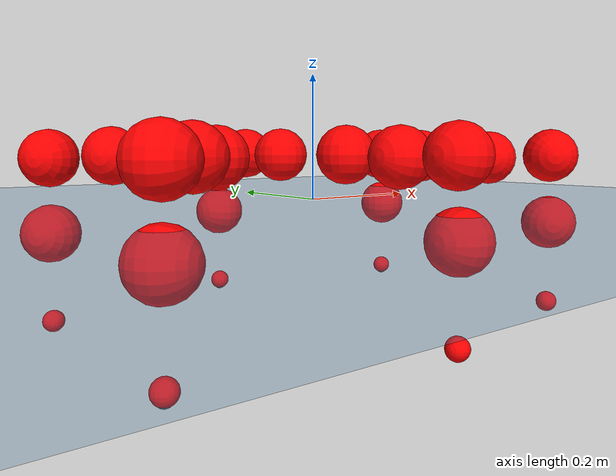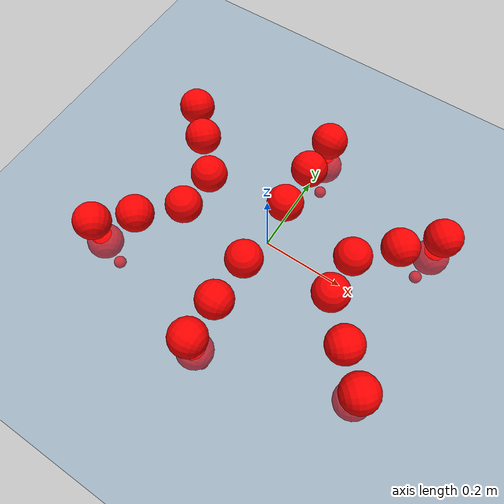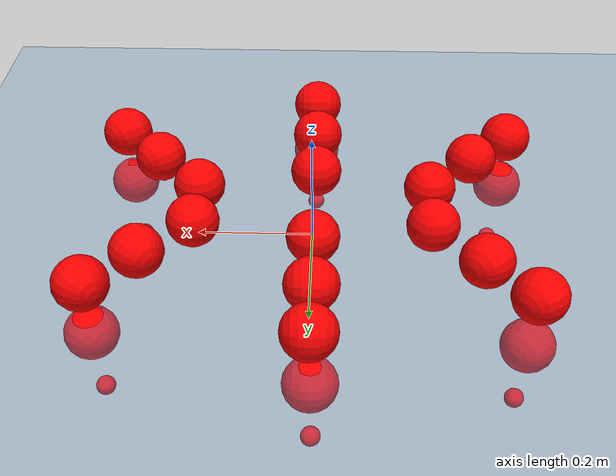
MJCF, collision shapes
<mujoco model="Golem">
  <compiler angle="radian" assetdir="assets" balanceinertia="true" inertiafromgeom="false"/>

  <option timestep="0.005" density="1.2" viscosity="2e-05"/>

  <size nkey="1"/>

  <visual>
    <quality shadowsize="8192"/>
    <map shadowclip="0.5"/>
  </visual>

  <default>
    <default class="/">
      <joint armature="0.01" damping="0.01" frictionloss="0.01"/>
      <geom contype="0" conaffinity="0" group="1" solref="-1000 -80"/>
      <site size="0.01 0.005 0.005" group="5"/>
      <general forcelimited="true" biastype="affine" gainprm="25" biasprm="0 -25 -0.5"/>
      <default class="visual">
        <geom type="mesh" group="2"/>
      </default>
      <default class="collision">
        <geom group="3"/>
      </default>
      <default class="foot">
        <geom size="0.01 0 0" condim="6" group="4" priority="1" solimp="0.015 1 0.01"/>
      </default>
      <default class="reward_collision_sphere">
        <geom group="5" rgba="1 0 0 1"/>
      </default>
    </default>
  </default>

  <asset>
    <texture type="skybox" colorspace="auto" name="//unnamed_texture_0" builtin="gradient" rgb1="0.95 0.95 0.95" rgb2="0.95 0.95 0.95" width="100" height="600"/>
    <texture type="2d" colorspace="auto" name="texplane" builtin="checker" rgb1="0.345 0.575 0.748" rgb2="0.345 0.575 0.748" markrgb="1 1 1" width="512" height="512"/>
    <material name="MatPlane" class="/" texture="texplane" texuniform="true" texrepeat="2 2" specular="0.9"/>
    <mesh name="body" class="/" file="body.stl" scale="0.001 0.001 0.001"/>
    <mesh name="coxa" class="/" file="coxa.stl" scale="0.001 0.001 0.001"/>
    <mesh name="femur" class="/" file="femur.stl" scale="0.001 0.001 0.001"/>
    <mesh name="tibia" class="/" file="tibia.stl" scale="0.001 0.001 0.001"/>
    <mesh name="tarsus" class="/" file="tarsus.stl" scale="0.001 0.001 0.001"/>
  </asset>

  <worldbody>
    <geom name="floor" class="/" size="100 100 0.125" type="plane" group="0" material="MatPlane"/>
    <light name="toplight_shadow" class="/" pos="0 0 5" dir="0.0990148 0.0990148 -0.990148" type="directional" ambient="0.04 0.04 0.04" diffuse="0.55 0.55 0.55" specular="0.12 0.12 0.12"/>
    <light name="toplight_fill" class="/" pos="0 0 5" dir="0.0990148 0.0990148 -0.990148" type="directional" castshadow="false" ambient="0.04 0.04 0.04" diffuse="0.3 0.3 0.3" specular="0.08 0.08 0.08"/>
    <body name="trunk" pos="-0.00257417 -0.000331484 -0.00182773" quat="1 -0.000194536 -6.82552e-05 0.000462497">
      <inertial pos="0.00143362 -0.000241161 -0.00410093" quat="0.999916 -0.00685091 0.0103886 -0.00349408" mass="5.04738" diaginertia="0.03357 0.0072457 0.0181416"/>
      <joint name="//unnamed_joint_0" type="free"/>
      <geom name="//unnamed_geom_1" class="/" pos="0 0 0.072285" quat="1 0 0 0" type="mesh" rgba="0.9 0.9 0.9 1" mesh="body"/>
      <site name="imu" class="/" pos="0.173505 -0.00195207 0.104956" size="0.0111541"/>
      <camera name="track" class="/" pos="0 -1.87882 0" quat="0.707107 0.707107 0 0" mode="trackcom"/>
      <camera name="ego_camera" class="/" pos="0.166059 0 0.112945" quat="-0.5 -0.5 0.5 0.5"/>
      <body name="coxa_RR" pos="-0.227652 -0.0751216 0.0722492" quat="0.382702 3.93308e-05 2.51081e-05 -0.923872">
        <inertial pos="-0.000440409 0.000263957 -0.000961955" quat="0.999927 0.000907715 0.0115153 0.00356521" mass="0.267064" diaginertia="0.0339819 0.00706028 0.0177429"/>
        <joint name="coxa_joint_RR" class="/" pos="0 0 0" axis="0.00115851 -0.00611006 -0.999981" range="-3.16454 3.19124" armature="0.0103027" damping="0.00450141" frictionloss="0.00997694"/>
        <geom name="//unnamed_geom_2" class="/" type="mesh" rgba="0.2 0.2 0.2 1" mesh="coxa"/>
        <geom name="//unnamed_geom_3" class="reward_collision_sphere" size="0.0446165" pos="-0.0383212 0 0"/>
        <body name="femur_RR" pos="0.0759694 0.0014622 0.00248984" quat="0.500417 -0.500101 0.499669 0.499813">
          <inertial pos="-0.00104368 0.00260081 0.002184" quat="0.999992 0.00374278 0.000445386 -0.00156231" mass="0.277362" diaginertia="0.0352161 0.00736755 0.019014"/>
          <joint name="femur_joint_RR" class="/" pos="0 0 0" axis="0.00102178 -0.000201096 -0.999999" range="-3.15885 3.13808" armature="0.0113047" damping="0.0193362" frictionloss="0.0123605"/>
          <geom name="//unnamed_geom_4" class="/" type="mesh" rgba="0.9 0.9 0.9 1" mesh="femur"/>
          <geom name="//unnamed_geom_5" class="reward_collision_sphere" size="0.0446165"/>
          <body name="tibia_RR" pos="0.00100361 -0.0998845 -0.00197096" quat="0.000131585 1 -0.000111755 -0.000347152">
            <inertial pos="0.00191615 -0.00172113 0.000774938" quat="0.999989 0.00162994 0.00358442 0.00249864" mass="0.281829" diaginertia="0.0337582 0.00734887 0.0183615"/>
            <joint name="tibia_joint_RR" class="/" pos="0 0 0" axis="-0.00397235 0.00114958 0.999991" range="-3.13911 3.13865" armature="0.0105116" damping="0.0206416" frictionloss="0.00982125"/>
            <geom name="//unnamed_geom_6" class="/" type="mesh" rgba="0.2 0.2 0.2 1" mesh="tibia"/>
            <geom name="//unnamed_geom_7" class="reward_collision_sphere" size="0.0446165"/>
            <body name="tarsus_RR" pos="0.10966 7.43715e-05 0.000144995" quat="1 3.49756e-05 0.000236048 0.00043184">
              <inertial pos="0.0746323 -0.00125103 0.000496395" quat="0.504801 0.492397 0.504592 0.498104" mass="0.285268" diaginertia="0.034934 0.00729956 0.0180452"/>
              <joint name="tarsus_joint_RR" class="/" pos="0 0 0" axis="0.003546 -0.00278383 0.99999" range="-3.18484 3.17999" armature="0.0108244" damping="0.0106338" frictionloss="0.0113189"/>
              <geom name="//unnamed_geom_8" class="/" type="mesh" rgba="0.9 0.9 0.9 1" mesh="tarsus"/>
              <geom name="foot_1" class="foot" size="0.0122005" pos="0.143066 0 0" quat="0 -0.707107 0 0.707107"/>
              <geom name="//unnamed_geom_10" class="reward_collision_sphere" size="0.0446165"/>
              <geom name="//unnamed_geom_11" class="reward_collision_sphere" size="0.0167312" pos="0.137318 0 0"/>
              <site name="foot_1" class="foot" pos="0.143066 0 0" quat="0 -0.707107 0 0.707107" size="0.0111541"/>
            </body>
          </body>
        </body>
      </body>
      <body name="coxa_RM" pos="-0.00276466 -0.125558 0.0749837" quat="0.706989 -0.00061847 -0.00047526 -0.707224">
        <inertial pos="-0.000692464 -0.00216403 -2.38695e-05" quat="0.999929 -0.00931474 -0.00348455 0.00660519" mass="0.283458" diaginertia="0.0350954 0.00730716 0.0189411"/>
        <joint name="coxa_joint_RM" class="/" pos="0 0 0" axis="0.00216506 0.000758857 -0.999997" range="-3.12397 3.11879" armature="0.0112927" damping="0.00340897" frictionloss="0.0117468"/>
        <geom name="//unnamed_geom_12" class="/" type="mesh" rgba="0.2 0.2 0.2 1" mesh="coxa"/>
        <geom name="//unnamed_geom_13" class="reward_collision_sphere" size="0.0446165" pos="-0.0383212 0 0"/>
        <body name="femur_RM" pos="0.0752185 -0.00036914 -0.00237113" quat="0.500616 -0.498913 0.499987 0.500482">
          <inertial pos="-0.00255282 -0.0022175 -0.00216643" quat="0.999988 0.00299971 0.00389469 -0.000902149" mass="0.286706" diaginertia="0.0343947 0.00728358 0.0186899"/>
          <joint name="femur_joint_RM" class="/" pos="0 0 0" axis="-0.00135185 0.0100867 -0.999948" range="-3.14799 3.19186" armature="0.0116576" damping="0.0166829" frictionloss="0.00963117"/>
          <geom name="//unnamed_geom_14" class="/" type="mesh" rgba="0.9 0.9 0.9 1" mesh="femur"/>
          <geom name="//unnamed_geom_15" class="reward_collision_sphere" size="0.0446165"/>
          <body name="tibia_RM" pos="-0.00292153 -0.0987327 0.00200564" quat="-0.000463843 1 -7.04891e-05 -0.000694265">
            <inertial pos="-0.000839661 -0.000596703 0.000768095" quat="1 3.68475e-05 -0.000115206 -8.32759e-05" mass="0.278183" diaginertia="0.0354903 0.00759387 0.0183315"/>
            <joint name="tibia_joint_RM" class="/" pos="0 0 0" axis="0.007561 0.0100086 0.999921" range="-3.12419 3.08341" armature="0.0118295" damping="0" frictionloss="0.0119256"/>
            <geom name="//unnamed_geom_16" class="/" type="mesh" rgba="0.2 0.2 0.2 1" mesh="tibia"/>
            <geom name="//unnamed_geom_17" class="reward_collision_sphere" size="0.0446165"/>
            <body name="tarsus_RM" pos="0.108493 0.00141231 -0.00237812" quat="1 0.000543317 -8.25834e-05 -0.000155107">
              <inertial pos="0.0771293 0.000923775 0.00284305" quat="0.500813 0.491884 0.496582 0.510533" mass="0.279125" diaginertia="0.0352032 0.0073406 0.0179446"/>
              <joint name="tarsus_joint_RM" class="/" pos="0 0 0" axis="-0.000698589 -0.00236967 0.999997" range="-3.19499 3.08931" armature="0.0113459" damping="0.00912773" frictionloss="0.011382"/>
              <geom name="//unnamed_geom_18" class="/" type="mesh" rgba="0.9 0.9 0.9 1" mesh="tarsus"/>
              <geom name="foot_2" class="foot" size="0.0113118" pos="0.143066 0 0" quat="0 -0.707107 0 0.707107"/>
              <geom name="//unnamed_geom_20" class="reward_collision_sphere" size="0.0446165"/>
              <geom name="//unnamed_geom_21" class="reward_collision_sphere" size="0.0167312" pos="0.137318 0 0"/>
              <site name="foot_2" class="foot" pos="0.143066 0 0" quat="0 -0.707107 0 0.707107" size="0.0111541"/>
            </body>
          </body>
        </body>
      </body>
      <body name="coxa_RF" pos="0.227477 -0.0763265 0.070836" quat="0.923911 0.000497289 -0.000689417 -0.382606">
        <inertial pos="0.000970899 -0.00190102 -0.000540544" quat="1 8.86394e-05 1.80248e-05 -1.6913e-06" mass="0.285759" diaginertia="0.0347719 0.00743052 0.0186852"/>
        <joint name="coxa_joint_RF" class="/" pos="0 0 0" axis="0.0075296 -0.00154941 -0.99997" range="-3.13927 3.19054" armature="0.0117044" damping="0" frictionloss="0.0108837"/>
        <geom name="//unnamed_geom_22" class="/" type="mesh" rgba="0.2 0.2 0.2 1" mesh="coxa"/>
        <geom name="//unnamed_geom_23" class="reward_collision_sphere" size="0.0446165" pos="-0.0383212 0 0"/>
        <body name="femur_RF" pos="0.0781048 -0.00140873 -0.00302903" quat="0.500009 -0.499844 0.500144 0.500003">
          <inertial pos="-0.00108413 -3.8887e-05 0.00286964" quat="1 0.000393076 0.000756115 -0.000356157" mass="0.274694" diaginertia="0.0342122 0.00728917 0.0188486"/>
          <joint name="femur_joint_RF" class="/" pos="0 0 0" axis="-0.000555978 0.00170387 -0.999998" range="-3.08764 3.12543" armature="0.0109797" damping="0.0113159" frictionloss="0.00963446"/>
          <geom name="//unnamed_geom_24" class="/" type="mesh" rgba="0.9 0.9 0.9 1" mesh="femur"/>
          <geom name="//unnamed_geom_25" class="reward_collision_sphere" size="0.0446165"/>
          <body name="tibia_RF" pos="-0.00360465 -0.101375 0.00148435" quat="-0.000248736 1 0.0002192 0.000152973">
            <inertial pos="0.00272567 -0.00156681 -8.53885e-05" quat="0.999929 0.00621873 0.00848409 0.00558263" mass="0.278726" diaginertia="0.0332918 0.00709304 0.0184575"/>
            <joint name="tibia_joint_RF" class="/" pos="0 0 0" axis="-0.00960155 0.00833418 0.999919" range="-3.13752 3.13956" armature="0.0107264" damping="0.0110175" frictionloss="0.0115587"/>
            <geom name="//unnamed_geom_26" class="/" type="mesh" rgba="0.2 0.2 0.2 1" mesh="tibia"/>
            <geom name="//unnamed_geom_27" class="reward_collision_sphere" size="0.0446165"/>
            <body name="tarsus_RF" pos="0.113555 -0.000218687 -0.00175199" quat="0.999999 -0.000973058 0.000378551 0.000144526">
              <inertial pos="0.078343 -0.00259523 0.000692517" quat="0.49907 0.499971 0.500857 0.5001" mass="0.270483" diaginertia="0.0342082 0.00709684 0.018892"/>
              <joint name="tarsus_joint_RF" class="/" pos="0 0 0" axis="-0.015646 0.00220028 0.999875" range="-3.19531 3.13897" armature="0.0110482" damping="0.0183335" frictionloss="0.0111494"/>
              <geom name="//unnamed_geom_28" class="/" type="mesh" rgba="0.9 0.9 0.9 1" mesh="tarsus"/>
              <geom name="foot_3" class="foot" size="0.0107531" pos="0.143066 0 0" quat="0 -0.707107 0 0.707107"/>
              <geom name="//unnamed_geom_30" class="reward_collision_sphere" size="0.0446165"/>
              <geom name="//unnamed_geom_31" class="reward_collision_sphere" size="0.0167312" pos="0.137318 0 0"/>
              <site name="foot_3" class="foot" pos="0.143066 0 0" quat="0 -0.707107 0 0.707107" size="0.0111541"/>
            </body>
          </body>
        </body>
      </body>
      <body name="coxa_LR" pos="-0.22591 0.0799268 0.0736319" quat="0.382326 -0.000634882 0.000194259 0.924027">
        <inertial pos="0.000898216 0.000312123 0.00295827" quat="0.99999 0.00289399 0.00332154 0.00025157" mass="0.279809" diaginertia="0.0341077 0.00741566 0.0179027"/>
        <joint name="coxa_joint_LR" class="/" pos="0 0 0" axis="0.00221067 0.00125562 -0.999997" range="-3.17044 3.14504" armature="0.0105628" damping="0.000225988" frictionloss="0.00973909"/>
        <geom name="//unnamed_geom_32" class="/" type="mesh" rgba="0.2 0.2 0.2 1" mesh="coxa"/>
        <geom name="//unnamed_geom_33" class="reward_collision_sphere" size="0.0446165" pos="-0.0383212 0 0"/>
        <body name="femur_LR" pos="0.0758036 -0.00363106 -0.000244347" quat="0.499989 -0.499975 0.500108 0.499929">
          <inertial pos="0.00275032 -0.00146928 0.00259686" quat="0.999996 -0.00239647 0.00149588 -0.000500841" mass="0.26878" diaginertia="0.0340108 0.00724349 0.0184894"/>
          <joint name="femur_joint_LR" class="/" pos="0 0 0" axis="0.00192002 -0.00307249 0.999993" range="-3.18503 3.08629" armature="0.00972922" damping="0" frictionloss="0.0114323"/>
          <geom name="//unnamed_geom_34" class="/" type="mesh" rgba="0.9 0.9 0.9 1" mesh="femur"/>
          <geom name="//unnamed_geom_35" class="reward_collision_sphere" size="0.0446165"/>
          <body name="tibia_LR" pos="0.00366222 -0.101185 -0.000265822" quat="-0.000709082 1 -0.000511564 0.000153462">
            <inertial pos="0.00178302 -0.00264468 0.00101252" quat="1 4.88703e-05 0.000315247 -0.000193331" mass="0.286279" diaginertia="0.0336639 0.00754721 0.0177694"/>
            <joint name="tibia_joint_LR" class="/" pos="0 0 0" axis="-0.0118974 -0.00699431 -0.999905" range="-3.16357 3.08307" armature="0.010858" damping="0.00780936" frictionloss="0.0114416"/>
            <geom name="//unnamed_geom_36" class="/" type="mesh" rgba="0.2 0.2 0.2 1" mesh="tibia"/>
            <geom name="//unnamed_geom_37" class="reward_collision_sphere" size="0.0446165"/>
            <body name="tarsus_LR" pos="0.115935 -0.00102543 -0.00217249" quat="0.999999 1.08915e-05 -0.000489214 0.00123956">
              <inertial pos="0.0746256 -0.00253618 -7.39812e-05" quat="0.499639 0.499896 0.499537 0.500927" mass="0.279396" diaginertia="0.034505 0.0071529 0.0190819"/>
              <joint name="tarsus_joint_LR" class="/" pos="0 0 0" axis="0.00158456 0.00230013 -0.999996" range="-3.14252 3.13589" armature="0.01178" damping="0.0295815" frictionloss="0.0126793"/>
              <geom name="//unnamed_geom_38" class="/" type="mesh" rgba="0.9 0.9 0.9 1" mesh="tarsus"/>
              <geom name="foot_4" class="foot" size="0.010937" pos="0.143066 0 0" quat="0.707107 0 -0.707107 0"/>
              <geom name="//unnamed_geom_40" class="reward_collision_sphere" size="0.0446165"/>
              <geom name="//unnamed_geom_41" class="reward_collision_sphere" size="0.0167312" pos="0.137318 0 0"/>
              <site name="foot_4" class="foot" pos="0.143066 0 0" quat="0.707107 0 -0.707107 0" size="0.0111541"/>
            </body>
          </body>
        </body>
      </body>
      <body name="coxa_LM" pos="-0.00123801 0.123414 0.0728512" quat="0.706875 0.000613973 2.81666e-05 0.707339">
        <inertial pos="0.00297365 -0.000356929 0.00108479" quat="0.999996 0.00222499 -0.0016345 0.000675218" mass="0.267791" diaginertia="0.033665 0.00705176 0.0178237"/>
        <joint name="coxa_joint_LM" class="/" pos="0 0 0" axis="-0.00358487 -0.00198313 -0.999992" stiffness="0.00425062" range="-3.16048 3.14477" armature="0.0114563" damping="0" frictionloss="0.00987681"/>
        <geom name="//unnamed_geom_42" class="/" type="mesh" rgba="0.2 0.2 0.2 1" mesh="coxa"/>
        <geom name="//unnamed_geom_43" class="reward_collision_sphere" size="0.0446165" pos="-0.0383212 0 0"/>
        <body name="femur_LM" pos="0.0728099 0.000185776 0.00176819" quat="0.500065 -0.500147 0.499815 0.499973">
          <inertial pos="0.00238745 -0.000453144 -0.00200771" quat="0.999999 -0.000689569 0.00080546 0.000509198" mass="0.284585" diaginertia="0.0342389 0.00762559 0.0196371"/>
          <joint name="femur_joint_LM" class="/" pos="0 0 0" axis="-0.00635427 -0.0117507 0.999911" range="-3.0885 3.10816" armature="0.0114753" damping="0.00807773" frictionloss="0.0111339"/>
          <geom name="//unnamed_geom_44" class="/" type="mesh" rgba="0.9 0.9 0.9 1" mesh="femur"/>
          <geom name="//unnamed_geom_45" class="reward_collision_sphere" size="0.0446165"/>
          <body name="tibia_LM" pos="-0.00139776 -0.0977264 -0.00104459" quat="-0.000166755 1 -5.65651e-05 -3.94841e-05">
            <inertial pos="-0.00256891 8.41925e-05 0.000309796" quat="0.999999 -0.000898943 0.000882128 -0.000157809" mass="0.272747" diaginertia="0.033881 0.00726515 0.0187494"/>
            <joint name="tibia_joint_LM" class="/" pos="0 0 0" axis="-0.00132915 0.00121956 -0.999998" stiffness="0.0114096" range="-3.14252 3.11" armature="0.00968772" damping="0.0118265" frictionloss="0.0100785"/>
            <geom name="//unnamed_geom_46" class="/" type="mesh" rgba="0.2 0.2 0.2 1" mesh="tibia"/>
            <geom name="//unnamed_geom_47" class="reward_collision_sphere" size="0.0446165"/>
            <body name="tarsus_LM" pos="0.115721 0.00249947 -0.00105375" quat="1 -2.93946e-05 1.42783e-05 0.000250074">
              <inertial pos="0.0741665 0.000542061 -0.00234038" quat="0.494325 0.496123 0.497444 0.511913" mass="0.275334" diaginertia="0.0329405 0.00731785 0.0178447"/>
              <joint name="tarsus_joint_LM" class="/" pos="0 0 0" axis="0.00715034 8.05729e-05 -0.999974" stiffness="0.001489" range="-3.0848 3.13759" armature="0.0112785" damping="0.0182865" frictionloss="0.0106619"/>
              <geom name="//unnamed_geom_48" class="/" type="mesh" rgba="0.9 0.9 0.9 1" mesh="tarsus"/>
              <geom name="foot_5" class="foot" size="0.0120067" pos="0.143066 0 0" quat="0.707107 0 -0.707107 0"/>
              <geom name="//unnamed_geom_50" class="reward_collision_sphere" size="0.0446165"/>
              <geom name="//unnamed_geom_51" class="reward_collision_sphere" size="0.0167312" pos="0.137318 0 0"/>
              <site name="foot_5" class="foot" pos="0.143066 0 0" quat="0.707107 0 -0.707107 0" size="0.0111541"/>
            </body>
          </body>
        </body>
      </body>
      <body name="coxa_LF" pos="0.226495 0.0776791 0.0731985" quat="0.923915 6.62422e-06 0.000403896 0.382598">
        <inertial pos="0.000154183 -0.00213859 -0.000211548" quat="0.999906 -0.0062158 -0.00469512 0.0112522" mass="0.284476" diaginertia="0.0348642 0.00757457 0.0190741"/>
        <joint name="coxa_joint_LF" class="/" pos="0 0 0" axis="0.00650377 -0.00273209 -0.999975" range="-3.08516 3.14054" armature="0.0122016" damping="0.0166226" frictionloss="0.0095905"/>
        <geom name="//unnamed_geom_52" class="/" type="mesh" rgba="0.2 0.2 0.2 1" mesh="coxa"/>
        <geom name="//unnamed_geom_53" class="reward_collision_sphere" size="0.0446165" pos="-0.0383212 0 0"/>
        <body name="femur_LF" pos="0.0729448 -0.00151891 0.00179243" quat="0.500245 -0.500074 0.499977 0.499704">
          <inertial pos="0.00071886 0.00234367 -0.00272281" quat="0.999997 0.000344514 0.000881186 -0.00234644" mass="0.283981" diaginertia="0.0351692 0.00753316 0.0182327"/>
          <joint name="femur_joint_LF" class="/" pos="0 0 0" axis="-0.000962224 -0.000413892 0.999999" range="-3.12582 3.13601" armature="0.0125198" damping="0" frictionloss="0.0114111"/>
          <geom name="//unnamed_geom_54" class="/" type="mesh" rgba="0.9 0.9 0.9 1" mesh="femur"/>
          <geom name="//unnamed_geom_55" class="reward_collision_sphere" size="0.0446165"/>
          <body name="tibia_LF" pos="0.000506056 -0.103639 0.00103188" quat="1.52666e-06 1 -2.09811e-05 1.12459e-05">
            <inertial pos="0.00250559 0.00263206 0.00206287" quat="0.999998 0.000258594 -0.00155974 -0.0011034" mass="0.27828" diaginertia="0.0338656 0.00755864 0.0189315"/>
            <joint name="tibia_joint_LF" class="/" pos="0 0 0" axis="-0.00112452 0.0044424 -0.99999" stiffness="0.00894247" range="-3.08812 3.08729" armature="0.011591" damping="0.0038935" frictionloss="0.00979859"/>
            <geom name="//unnamed_geom_56" class="/" type="mesh" rgba="0.2 0.2 0.2 1" mesh="tibia"/>
            <geom name="//unnamed_geom_57" class="reward_collision_sphere" size="0.0446165"/>
            <body name="tarsus_LF" pos="0.110143 0.00216894 -0.000255799" quat="1 0.000133911 0.000151878 -4.89341e-05">
              <inertial pos="0.0745078 0.000567689 0.00251738" quat="0.505415 0.502112 0.504286 0.48799" mass="0.278138" diaginertia="0.0352528 0.00733334 0.0189145"/>
              <joint name="tarsus_joint_LF" class="/" pos="0 0 0" axis="0.00259497 -0.00207256 -0.999994" stiffness="0.00799818" range="-3.1957 3.08872" armature="0.0123974" damping="0.0109747" frictionloss="0.0123137"/>
              <geom name="//unnamed_geom_58" class="/" type="mesh" rgba="0.9 0.9 0.9 1" mesh="tarsus"/>
              <geom name="foot_6" class="foot" size="0.0120533" pos="0.143066 0 0" quat="0.707107 0 -0.707107 0"/>
              <geom name="//unnamed_geom_60" class="reward_collision_sphere" size="0.0446165"/>
              <geom name="//unnamed_geom_61" class="reward_collision_sphere" size="0.0167312" pos="0.137318 0 0"/>
              <site name="foot_6" class="foot" pos="0.143066 0 0" quat="0.707107 0 -0.707107 0" size="0.0111541"/>
            </body>
          </body>
        </body>
      </body>
    </body>
  </worldbody>

  <contact>
    <pair class="/" geom1="floor" geom2="foot_1" name="//unnamed_contact_0"/>
    <pair class="/" geom1="floor" geom2="foot_2" name="//unnamed_contact_1"/>
    <pair class="/" geom1="floor" geom2="foot_3" name="//unnamed_contact_2"/>
    <pair class="/" geom1="floor" geom2="foot_4" name="//unnamed_contact_3"/>
    <pair class="/" geom1="floor" geom2="foot_5" name="//unnamed_contact_4"/>
    <pair class="/" geom1="floor" geom2="foot_6" name="//unnamed_contact_5"/>
  </contact>

  <actuator>
    <general name="coxa_joint_RR" class="/" joint="coxa_joint_RR" forcerange="-8.33729 8.33729" gainprm="28.4679" biasprm="0 -28.4679 -0.596509"/>
    <general name="femur_joint_RR" class="/" joint="femur_joint_RR" forcerange="-8.31226 8.31226" gainprm="28.4679" biasprm="0 -28.4679 -0.596509"/>
    <general name="tibia_joint_RR" class="/" joint="tibia_joint_RR" forcerange="-8.20187 8.20187" gainprm="28.4679" biasprm="0 -28.4679 -0.596509"/>
    <general name="tarsus_joint_RR" class="/" joint="tarsus_joint_RR" forcerange="-7.90403 7.90403" gainprm="28.4679" biasprm="0 -28.4679 -0.596509"/>
    <general name="coxa_joint_RM" class="/" joint="coxa_joint_RM" forcerange="-8.36478 8.36478" gainprm="28.4679" biasprm="0 -28.4679 -0.596509"/>
    <general name="femur_joint_RM" class="/" joint="femur_joint_RM" forcerange="-8.31209 8.31209" gainprm="28.4679" biasprm="0 -28.4679 -0.596509"/>
    <general name="tibia_joint_RM" class="/" joint="tibia_joint_RM" forcerange="-8.22651 8.22651" gainprm="28.4679" biasprm="0 -28.4679 -0.596509"/>
    <general name="tarsus_joint_RM" class="/" joint="tarsus_joint_RM" forcerange="-7.30338 7.30338" gainprm="28.4679" biasprm="0 -28.4679 -0.596509"/>
    <general name="coxa_joint_RF" class="/" joint="coxa_joint_RF" forcerange="-8.32884 8.32884" gainprm="28.4679" biasprm="0 -28.4679 -0.596509"/>
    <general name="femur_joint_RF" class="/" joint="femur_joint_RF" forcerange="-8.18354 8.18354" gainprm="28.4679" biasprm="0 -28.4679 -0.596509"/>
    <general name="tibia_joint_RF" class="/" joint="tibia_joint_RF" forcerange="-8.1886 8.1886" gainprm="28.4679" biasprm="0 -28.4679 -0.596509"/>
    <general name="tarsus_joint_RF" class="/" joint="tarsus_joint_RF" forcerange="-8.27361 8.27361" gainprm="28.4679" biasprm="0 -28.4679 -0.596509"/>
    <general name="coxa_joint_LR" class="/" joint="coxa_joint_LR" forcerange="-7.99596 7.99596" gainprm="28.4679" biasprm="0 -28.4679 -0.596509"/>
    <general name="femur_joint_LR" class="/" joint="femur_joint_LR" forcerange="-7.29103 7.29103" gainprm="28.4679" biasprm="0 -28.4679 -0.596509"/>
    <general name="tibia_joint_LR" class="/" joint="tibia_joint_LR" forcerange="-7.82308 7.82308" gainprm="28.4679" biasprm="0 -28.4679 -0.596509"/>
    <general name="tarsus_joint_LR" class="/" joint="tarsus_joint_LR" forcerange="-8.19967 8.19967" gainprm="28.4679" biasprm="0 -28.4679 -0.596509"/>
    <general name="coxa_joint_LM" class="/" joint="coxa_joint_LM" forcerange="-7.98848 7.98848" gainprm="28.4679" biasprm="0 -28.4679 -0.596509"/>
    <general name="femur_joint_LM" class="/" joint="femur_joint_LM" forcerange="-7.65524 7.65524" gainprm="28.4679" biasprm="0 -28.4679 -0.596509"/>
    <general name="tibia_joint_LM" class="/" joint="tibia_joint_LM" forcerange="-8.10636 8.10636" gainprm="28.4679" biasprm="0 -28.4679 -0.596509"/>
    <general name="tarsus_joint_LM" class="/" joint="tarsus_joint_LM" forcerange="-8.8054 8.8054" gainprm="28.4679" biasprm="0 -28.4679 -0.596509"/>
    <general name="coxa_joint_LF" class="/" joint="coxa_joint_LF" forcerange="-8.10064 8.10064" gainprm="28.4679" biasprm="0 -28.4679 -0.596509"/>
    <general name="femur_joint_LF" class="/" joint="femur_joint_LF" forcerange="-8.96549 8.96549" gainprm="28.4679" biasprm="0 -28.4679 -0.596509"/>
    <general name="tibia_joint_LF" class="/" joint="tibia_joint_LF" forcerange="-8.15715 8.15715" gainprm="28.4679" biasprm="0 -28.4679 -0.596509"/>
    <general name="tarsus_joint_LF" class="/" joint="tarsus_joint_LF" forcerange="-7.53756 7.53756" gainprm="28.4679" biasprm="0 -28.4679 -0.596509"/>
  </actuator>

  <sensor>
    <gyro site="imu" name="imu_angular_velocity"/>
    <velocimeter site="imu" name="imu_linear_velocity"/>
    <framelinvel objtype="site" objname="foot_1" name="foot_1_global_linear_velocity"/>
    <framelinvel objtype="site" objname="foot_2" name="foot_2_global_linear_velocity"/>
    <framelinvel objtype="site" objname="foot_3" name="foot_3_global_linear_velocity"/>
    <framelinvel objtype="site" objname="foot_4" name="foot_4_global_linear_velocity"/>
    <framelinvel objtype="site" objname="foot_5" name="foot_5_global_linear_velocity"/>
    <framelinvel objtype="site" objname="foot_6" name="foot_6_global_linear_velocity"/>
  </sensor>

  <keyframe>
    <key name="home" qpos="0 0 0.1457 1 0 0 0 0 0 0 0 0 0 0 0 0 0 0 0 0 0 0 0 0 0 0 0 0 0 0 0"/>
  </keyframe>
</mujoco>
